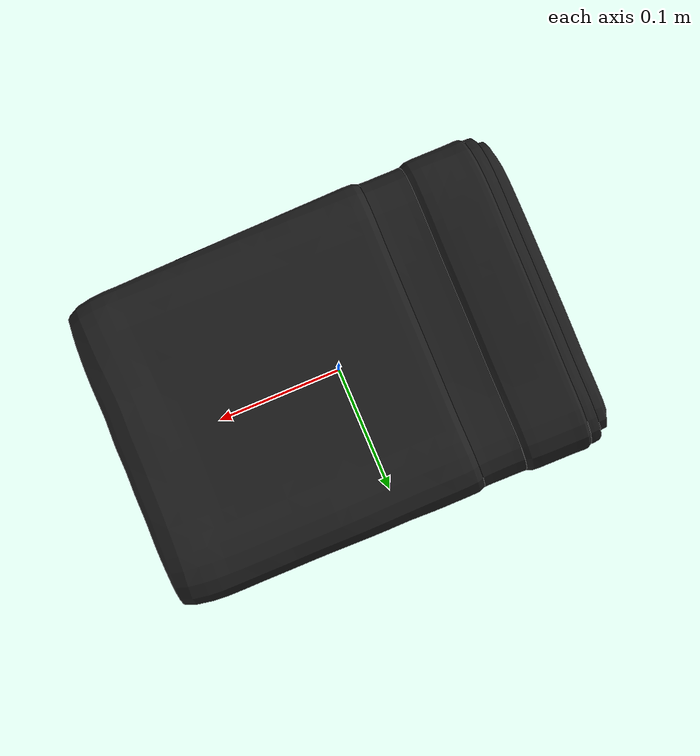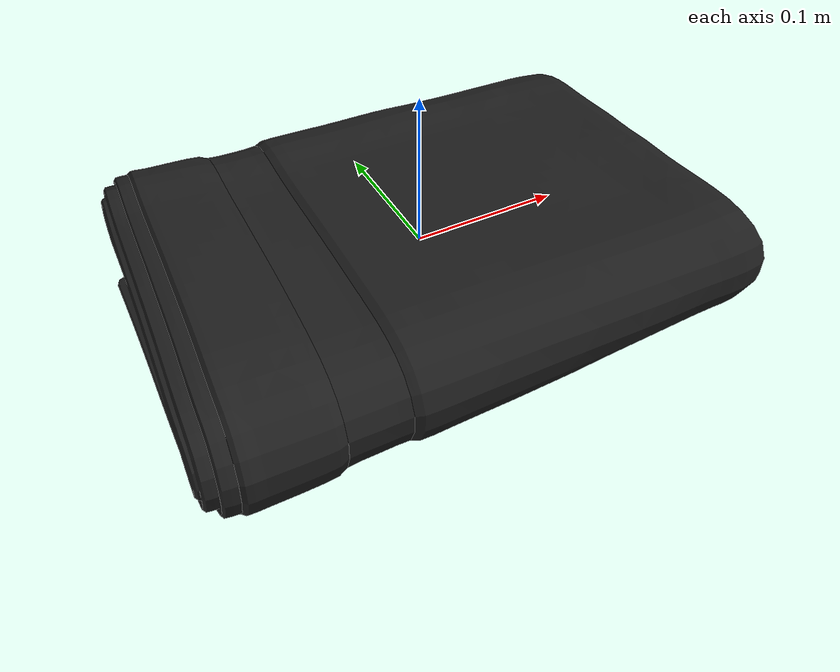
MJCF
<?xml version="1.0" ?>
<mujoco model="black_towel">
	<compiler meshdir="black_towel/meshes" texturedir="black_towel/textures" angle="radian" autolimits="true" balanceinertia="true" boundmass="0.000001" boundinertia="0.000001"/>
	<default>
		<default class="visual">
			<geom contype="0" conaffinity="0"/>
		</default>
		<default class="collision">
			<geom rgba="1.0 0.0 0.0 0.0"/>
		</default>
	</default>
	<asset>
		<mesh name="BlackTowel002" file="obj/BlackTowel002.obj" scale="1.0 1.0 1.0"/>
		<mesh name="BlackTowel002_001" file="stl/BlackTowel002_001.stl" scale="1.0 1.0 1.0"/>
		<mesh name="BlackTowel002_002" file="stl/BlackTowel002_002.stl" scale="1.0 1.0 1.0"/>
		<mesh name="BlackTowel002_003" file="stl/BlackTowel002_003.stl" scale="1.0 1.0 1.0"/>
		<mesh name="BlackTowel002_004" file="stl/BlackTowel002_004.stl" scale="1.0 1.0 1.0"/>
		<mesh name="BlackTowel002_005" file="stl/BlackTowel002_005.stl" scale="1.0 1.0 1.0"/>
		<mesh name="BlackTowel002_006" file="stl/BlackTowel002_006.stl" scale="1.0 1.0 1.0"/>
		<mesh name="BlackTowel002_007" file="stl/BlackTowel002_007.stl" scale="1.0 1.0 1.0"/>
		<mesh name="BlackTowel002_008" file="stl/BlackTowel002_008.stl" scale="1.0 1.0 1.0"/>
		<mesh name="BlackTowel002_009" file="stl/BlackTowel002_009.stl" scale="1.0 1.0 1.0"/>
		<mesh name="BlackTowel002_010" file="stl/BlackTowel002_010.stl" scale="1.0 1.0 1.0"/>
		<mesh name="BlackTowel001" file="obj/BlackTowel001.obj" scale="1.0 1.0 1.0"/>
		<mesh name="BlackTowel001_001" file="stl/BlackTowel001_001.stl" scale="1.0 1.0 1.0"/>
		<mesh name="BlackTowel001_002" file="stl/BlackTowel001_002.stl" scale="1.0 1.0 1.0"/>
		<mesh name="BlackTowel001_003" file="stl/BlackTowel001_003.stl" scale="1.0 1.0 1.0"/>
		<mesh name="BlackTowel001_004" file="stl/BlackTowel001_004.stl" scale="1.0 1.0 1.0"/>
		<mesh name="BlackTowel001_005" file="stl/BlackTowel001_005.stl" scale="1.0 1.0 1.0"/>
		<mesh name="BlackTowel001_006" file="stl/BlackTowel001_006.stl" scale="1.0 1.0 1.0"/>
		<material name="M_BlackTowel002" texture="T_BlackTowel002"/>
		<material name="M_BlackTowel001" texture="T_BlackTowel001"/>
		<texture name="T_BlackTowel002" type="2d" file="T_BlackTowel002.png"/>
		<texture name="T_BlackTowel001" type="2d" file="T_BlackTowel001.png"/>
	</asset>
	<worldbody>
		<body name="black_towel" pos="0.0 0.0 0.0" quat="1.0 0.0 0.0 0.0">
			<body name="black_towel002" pos="0.0 0.0 0.0" quat="1.0 0.0 0.0 0.0">
				<inertial mass="2.8067870140075684" pos="-0.09221678227186203 0.010525413788855076 -0.003229085821658373" quat="0.9994341731071472 -0.029559262096881866 0.001972401514649391 0.015926823019981384" diaginertia="0.011557471938431263 0.03699008375406265 0.04691235348582268"/>
				<geom name="BlackTowel002" type="mesh" pos="0.0 0.0 0.0" quat="1.0 0.0 0.0 0.0" mesh="BlackTowel002" material="M_BlackTowel002" class="visual"/>
				<geom name="BlackTowel002_001" type="mesh" pos="0.0 0.0 0.0" quat="1.0 0.0 0.0 0.0" mesh="BlackTowel002_001" class="collision"/>
				<geom name="BlackTowel002_002" type="mesh" pos="0.0 0.0 0.0" quat="1.0 0.0 0.0 0.0" mesh="BlackTowel002_002" class="collision"/>
				<geom name="BlackTowel002_003" type="mesh" pos="0.0 0.0 0.0" quat="1.0 0.0 0.0 0.0" mesh="BlackTowel002_003" class="collision"/>
				<geom name="BlackTowel002_004" type="mesh" pos="0.0 0.0 0.0" quat="1.0 0.0 0.0 0.0" mesh="BlackTowel002_004" class="collision"/>
				<geom name="BlackTowel002_005" type="mesh" pos="0.0 0.0 0.0" quat="1.0 0.0 0.0 0.0" mesh="BlackTowel002_005" class="collision"/>
				<geom name="BlackTowel002_006" type="mesh" pos="0.0 0.0 0.0" quat="1.0 0.0 0.0 0.0" mesh="BlackTowel002_006" class="collision"/>
				<geom name="BlackTowel002_007" type="mesh" pos="0.0 0.0 0.0" quat="1.0 0.0 0.0 0.0" mesh="BlackTowel002_007" class="collision"/>
				<geom name="BlackTowel002_008" type="mesh" pos="0.0 0.0 0.0" quat="1.0 0.0 0.0 0.0" mesh="BlackTowel002_008" class="collision"/>
				<geom name="BlackTowel002_009" type="mesh" pos="0.0 0.0 0.0" quat="1.0 0.0 0.0 0.0" mesh="BlackTowel002_009" class="collision"/>
				<geom name="BlackTowel002_010" type="mesh" pos="0.0 0.0 0.0" quat="1.0 0.0 0.0 0.0" mesh="BlackTowel002_010" class="collision"/>
			</body>
			<body name="black_towel001" pos="0.0 0.0 0.0" quat="1.0 0.0 0.0 0.0">
				<inertial mass="13.021437644958496" pos="0.027078310027718544 -0.005015066359192133 -0.0011904765851795673" quat="0.9997866153717041 0.016430513933300972 0.004260017070919275 -0.011775031685829163" diaginertia="0.061788178980350494 0.11718115955591202 0.17013384401798248"/>
				<geom name="BlackTowel001" type="mesh" pos="0.0 0.0 0.0" quat="1.0 0.0 0.0 0.0" mesh="BlackTowel001" material="M_BlackTowel001" class="visual"/>
				<geom name="BlackTowel001_001" type="mesh" pos="0.0 0.0 0.0" quat="1.0 0.0 0.0 0.0" mesh="BlackTowel001_001" class="collision"/>
				<geom name="BlackTowel001_002" type="mesh" pos="0.0 0.0 0.0" quat="1.0 0.0 0.0 0.0" mesh="BlackTowel001_002" class="collision"/>
				<geom name="BlackTowel001_003" type="mesh" pos="0.0 0.0 0.0" quat="1.0 0.0 0.0 0.0" mesh="BlackTowel001_003" class="collision"/>
				<geom name="BlackTowel001_004" type="mesh" pos="0.0 0.0 0.0" quat="1.0 0.0 0.0 0.0" mesh="BlackTowel001_004" class="collision"/>
				<geom name="BlackTowel001_005" type="mesh" pos="0.0 0.0 0.0" quat="1.0 0.0 0.0 0.0" mesh="BlackTowel001_005" class="collision"/>
				<geom name="BlackTowel001_006" type="mesh" pos="0.0 0.0 0.0" quat="1.0 0.0 0.0 0.0" mesh="BlackTowel001_006" class="collision"/>
			</body>
		</body>
	</worldbody>
	<equality/>
</mujoco>
